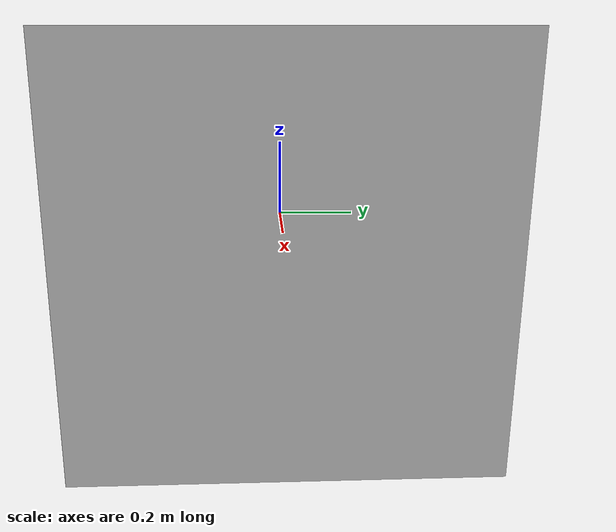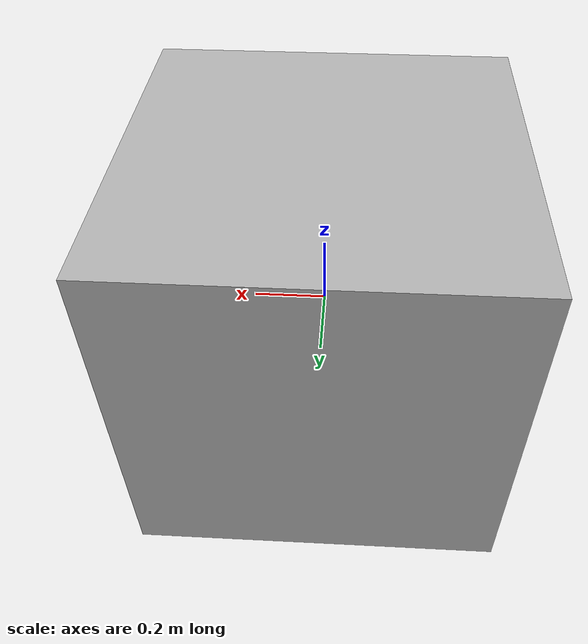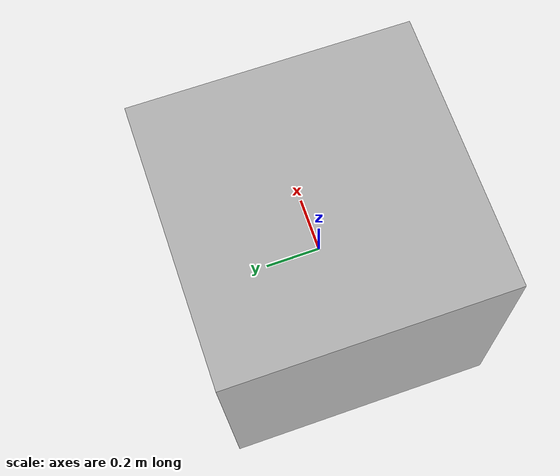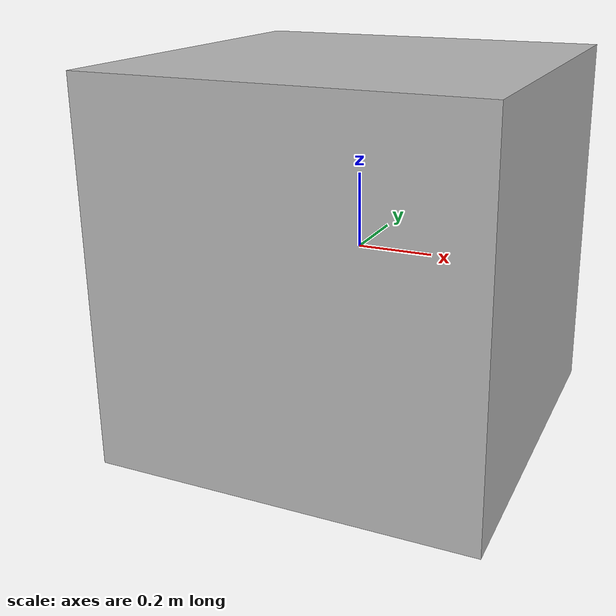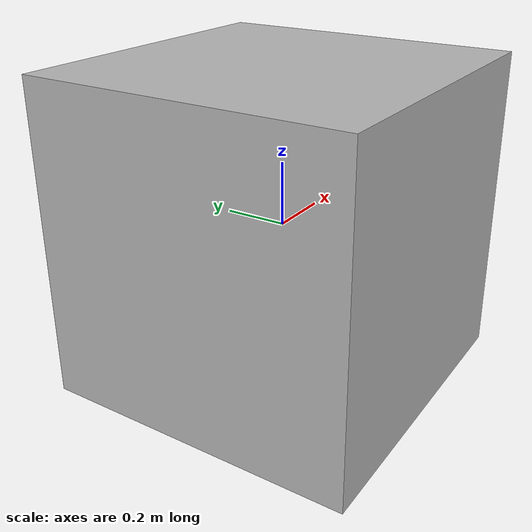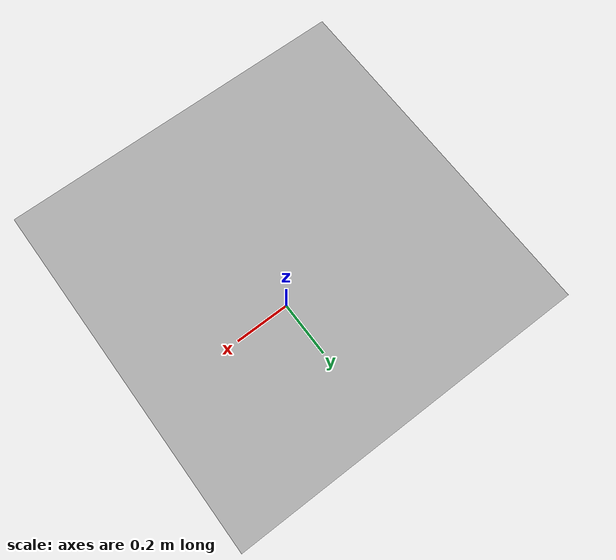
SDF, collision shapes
<?xml version="1.0"?>
<sdf version="1.6">
  <model name="Fronts">
    <static>true</static>
    <link name="robot_link">
      <collision name="body_collision">
        <geometry>
          <box>
            <size>1 1 1</size>
          </box>
        </geometry>
      </collision>
      <visual name="visual">
        <pose>0 0 0.5 1.57079 0 0</pose>
        <geometry>
          <mesh>
            <uri>model://example_model/meshes/tank_fronts.DAE</uri>
          </mesh>
        </geometry>
        <material>
          <script>
            <uri>model://example_model/materials/scripts/repeated.material</uri>
            <name>FrontMaterial</name>
          </script>
        </material>
      </visual>
    </link>

    <model name="Floors">
      <static>true</static>
      <link name="robot_link">
        <collision name="body_collision">
          <geometry>
            <box>
              <size>1 1 1</size>
            </box>
          </geometry>
        </collision>
        <visual name="visual">
          <pose>0 0 0.5 1.57079 0 0</pose>
          <geometry>
            <mesh>
              <uri>model://example_model/meshes/floors.DAE</uri>
            </mesh>
          </geometry>
          <material>
            <script>
              <uri>model://example_model/materials/scripts/repeated.material</uri>
              <name>FloorsMaterial </name>
            </script>
          </material>
        </visual>
      </link>
    </model>

    <model name="Sides and beams">
      <static>true</static>
      <link name="robot_link">
        <collision name="body_collision">
          <geometry>
            <box>
              <size>1 1 1</size>
            </box>
          </geometry>
        </collision>
        <visual name="visual">
          <pose>0 0 0.5 1.57079 0 0</pose>
          <geometry>
            <mesh>
              <uri>model://example_model/meshes/sides.DAE</uri>
            </mesh>
          </geometry>
          <material>
            <script>
              <uri>model://example_model/materials/scripts/repeated.material</uri>
              <name>SidesMaterial </name>
            </script>
          </material>
        </visual>
      </link>
    </model>

    <model name="Top beams">
      <static>true</static>
      <link name="robot_link">
        <collision name="body_collision">
          <geometry>
            <box>
              <size>1 1 1</size>
            </box>
          </geometry>
        </collision>
        <visual name="visual">
          <pose>0 0 0.5 1.57079 0 0</pose>
          <geometry>
            <mesh>
              <uri>model://example_model/meshes/beams_top.DAE</uri>
            </mesh>
          </geometry>
          <material>
            <script>
              <uri>model://example_model/materials/scripts/repeated.material</uri>
              <name>BeamsMaterial </name>
            </script>
          </material>
        </visual>
      </link>
    </model>

    <model name="Awnings">
      <static>true</static>
      <link name="robot_link">
        <collision name="body_collision">
          <geometry>
            <box>
              <size>1 1 1</size>
            </box>
          </geometry>
        </collision>
        <visual name="visual">
          <pose>0 0 0.5 1.57079 0 0</pose>
          <geometry>
            <mesh>
              <uri>model://example_model/meshes/awnings.DAE</uri>
            </mesh>
          </geometry>
          <material>
            <script>
              <uri>model://example_model/materials/scripts/repeated.material</uri>
              <name>AwningsMaterial </name>
            </script>
          </material>
        </visual>
      </link>
    </model>

    <model name="Pipes_etc">
      <static>true</static>
      <link name="robot_link">
        <collision name="body_collision">
          <geometry>
            <box>
              <size>1 1 1</size>
            </box>
          </geometry>
        </collision>
        <visual name="visual">
          <pose>0 0 0.5 1.57079 0 0</pose>
          <geometry>
            <mesh>
              <uri>model://example_model/meshes/pipes_etc.DAE</uri>
            </mesh>
          </geometry>
          <material>
            <script>
              <uri>model://example_model/materials/scripts/repeated.material</uri>
              <name>PipesMaterial </name>
            </script>
          </material>
        </visual>
      </link>
    </model>

  </model>

</sdf>
